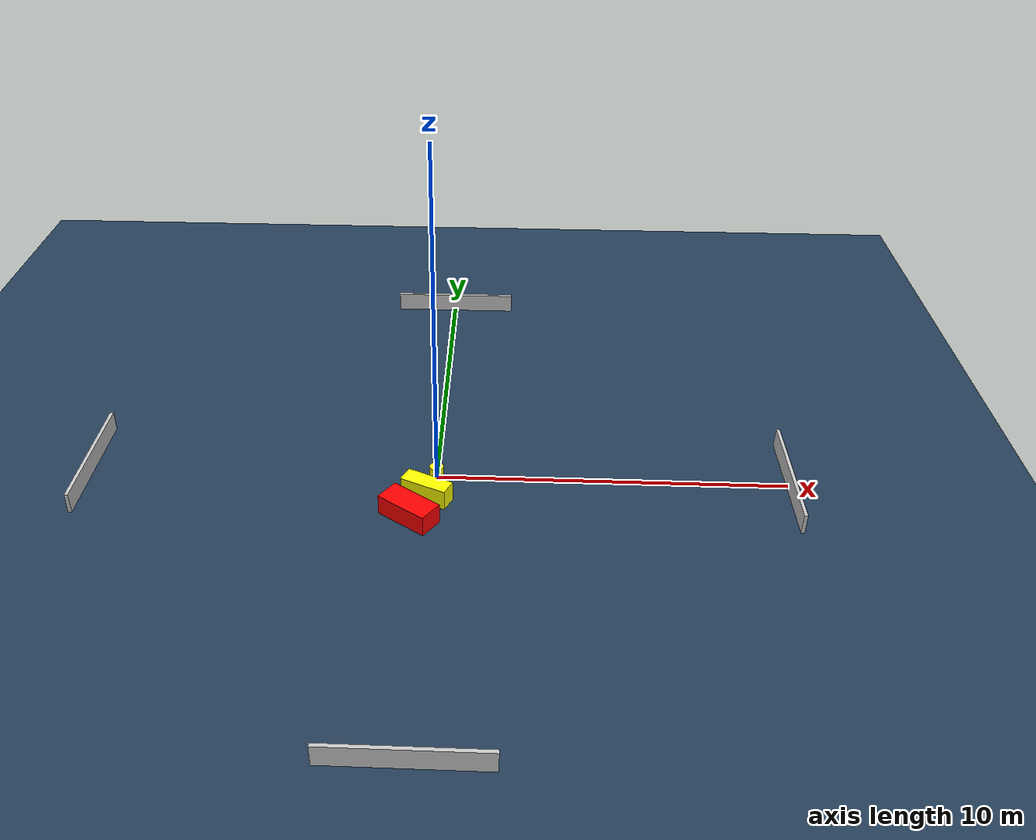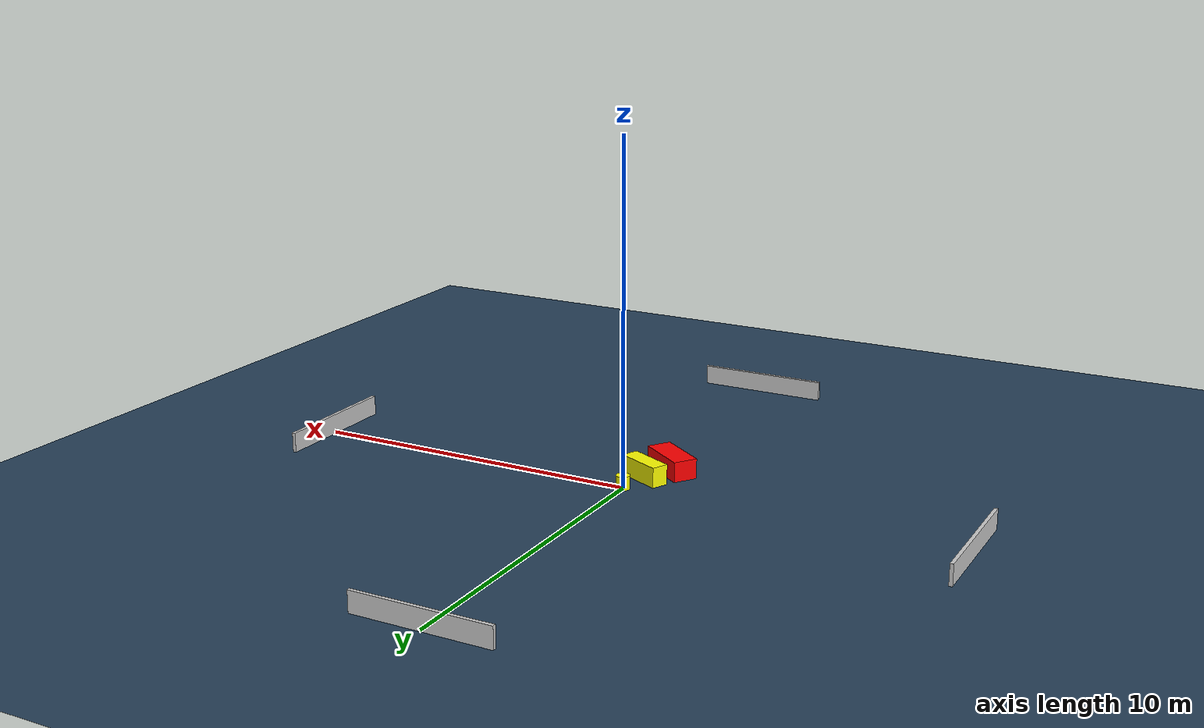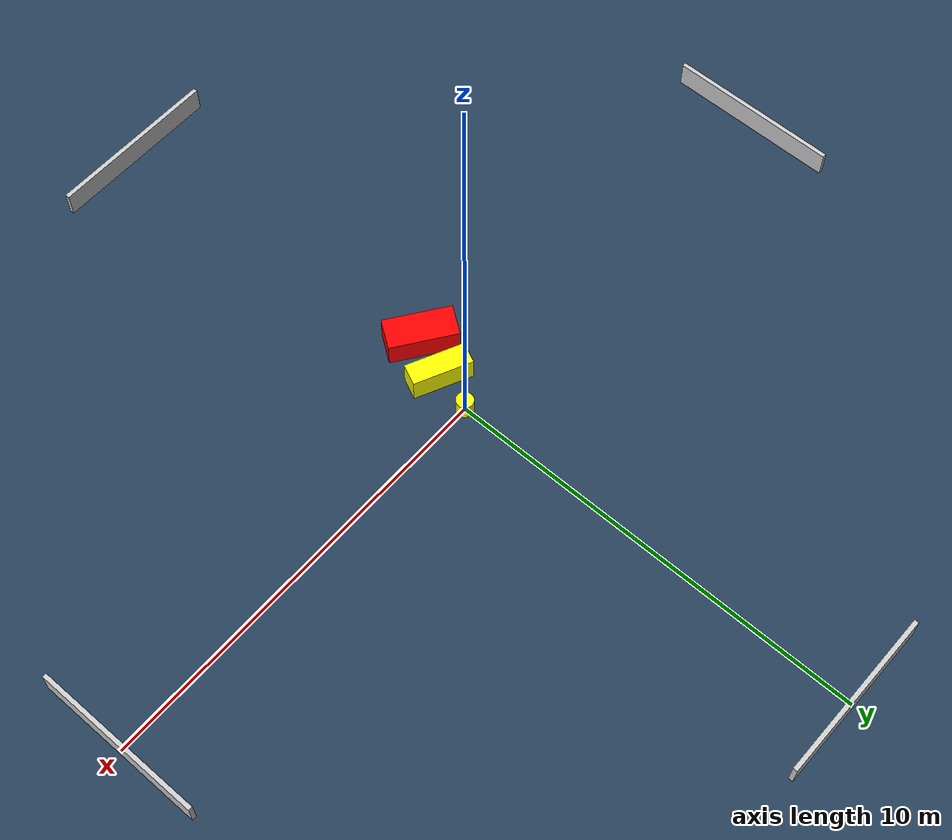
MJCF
<?xml version="1.0" ?>
<mujoco model="generated_environment">
  <option timestep="0.01" integrator="RK4" cone="elliptic"/>
  <default>
    <geom density="1"/>
  </default>
  <asset>
    <texture builtin="gradient" height="3072" name="skybox" rgb1="0.3 0.5 0.7" rgb2="0 0 0" type="skybox" width="512"/>
    <texture builtin="checker" height="300" name="groundplane" rgb1="0.2 0.3 0.4" rgb2="0.1 0.2 0.3" type="2d" width="300"/>
    <material name="groundplane" reflectance="0.2" texrepeat="5 5" texture="groundplane"/>
  </asset>
  <worldbody>
    <light dir="0 0 -1" directional="true" pos="0 0 1.5"/>
    <geom condim="3" friction="0.5 0.005 0.001" material="groundplane" name="floor" pos="0 0 0" size="0 0 0.05" type="plane"/>
    <body name="walls">
      <geom name="wall_1" condim="4" pos="-10.0 0.0 0.3" rgba="0.800000011920929 0.800000011920929 0.800000011920929 1.0" size="0.05 2.0 0.3" type="box"/>
      <geom name="wall_2" condim="4" pos="10.0 0.0 0.3" rgba="0.800000011920929 0.800000011920929 0.800000011920929 1.0" size="0.05 2.0 0.3" type="box"/>
      <geom name="wall_3" condim="4" pos="0.0 -10.0 0.3" rgba="0.800000011920929 0.800000011920929 0.800000011920929 1.0" size="2.0 0.05 0.3" type="box"/>
      <geom name="wall_4" condim="4" pos="0.0 10.0 0.3" rgba="0.800000011920929 0.800000011920929 0.800000011920929 1.0" size="2.0 0.05 0.3" type="box"/>
    </body>
    <body name="robot">
      <joint name="joint_x" type="slide" pos="0 0 0" axis="1 0 0"/>
      <joint name="joint_y" type="slide" pos="0 0 0" axis="0 1 0"/>
      <geom name="robot" type="cylinder" pos="0.0 0.0 0.2" size="0.2 0.2 0.0" mass="5.0" friction="1.0 0.005 0.0001" condim="4" rgba="1.0 1.0 0.0 1.0"/>
    </body>
    <body name="obstacle_1_movable">
      <geom name="obstacle_1_movable" condim="4" pos="-0.2161194694358764 -0.920307493991974 0.3" euler="0 0 64.94755616511594" friction="0.0 0.005 0.001" rgba="1.0 1.0 0.0 1.0" size="0.2524200712216037 0.6928558750791715 0.3" type="box" mass="0.1"/>
      <joint type="free"/>
    </body>
    <body name="obstacle_2_static">
      <geom name="obstacle_2_static" condim="4" pos="-0.6388645331721493 -1.8192644613210316 0.3" euler="0 0 144.9736425817116" friction="0.0 0.005 0.001" rgba="1.0 0.0 0.0 1.0" size="0.787414375887437 0.36279073844041054 0.3" type="box"/>
    </body>
  </worldbody>
  <actuator>
    <motor name="actuator_x" joint="joint_x" gear="1" ctrlrange="-1 1"/>
    <motor name="actuator_y" joint="joint_y" gear="1" ctrlrange="-1 1"/>
  </actuator>
</mujoco>
